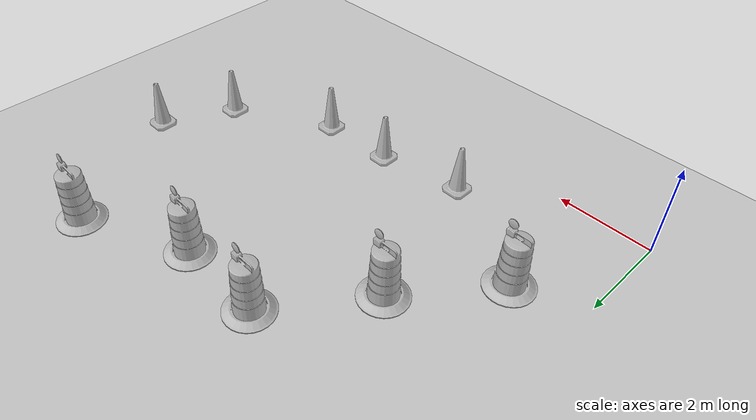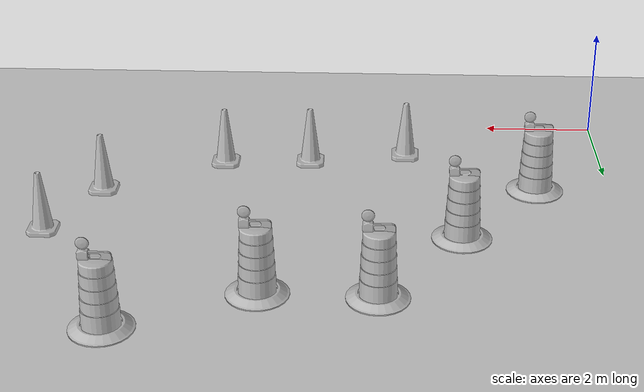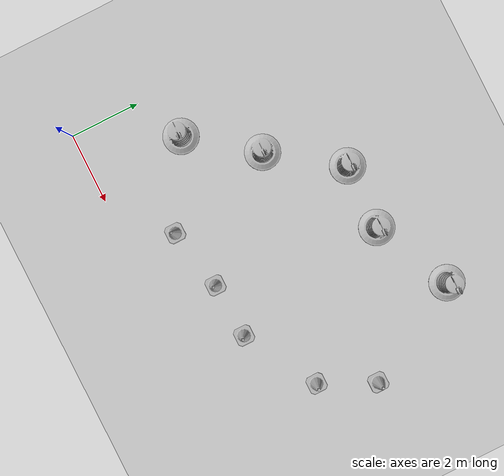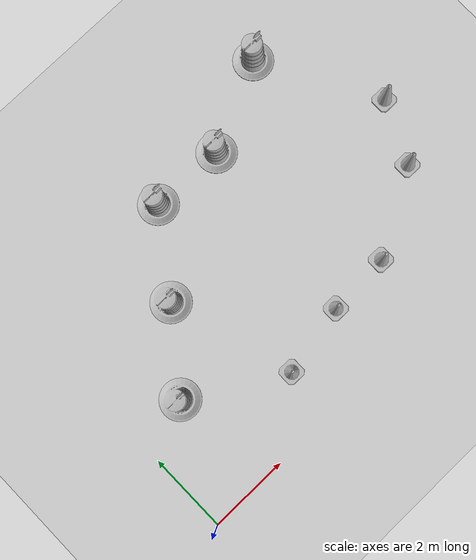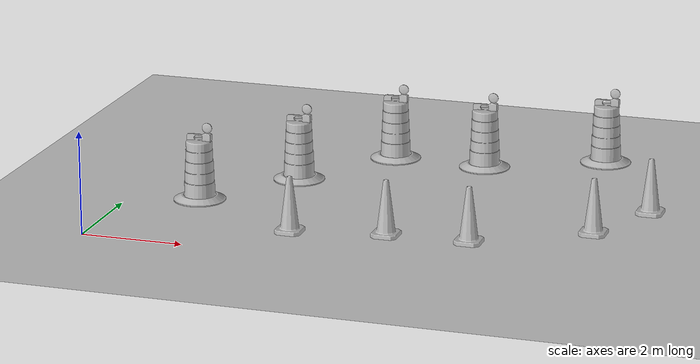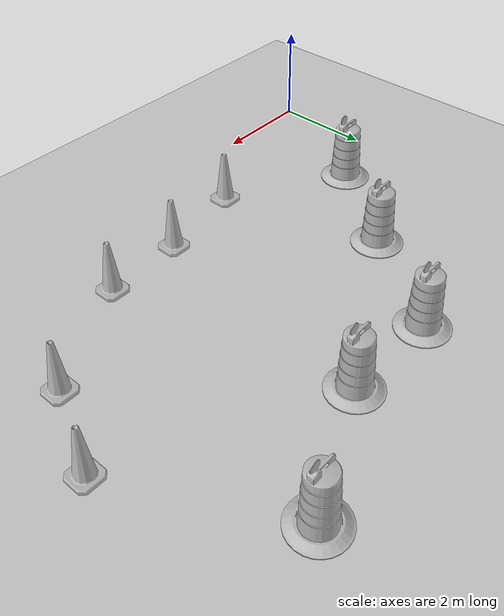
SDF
<sdf version="1.7">
 <world name="default">
  <light name="sun" type="directional">
   <pose>0 0 10 0 -0 0</pose>
   <diffuse>0.8 0.8 0.8 1</diffuse>
   <specular>0.2 0.2 0.2 1</specular>
   <attenuation>
    <range>1000</range>
    <constant>0.9</constant>
    <linear>0.01</linear>
    <quadratic>0.001</quadratic>
   </attenuation>
   <direction>-0.5 0.1 -0.9</direction>
   <spot><inner_angle>0</inner_angle><outer_angle>0</outer_angle><falloff>0</falloff></spot>
  </light>
  <model name="ground_plane">
   <static>1</static>
   <link name="link">
    <collision name="collision">
     <geometry><plane><normal>0 0 1</normal><size>100 100</size></plane></geometry>
     <surface><friction><ode><mu>100</mu><mu2>50</mu2></ode></friction></surface>
    </collision>
    <visual name="visual">
     <cast_shadows>0</cast_shadows>
     <geometry><plane><normal>0 0 1</normal><size>100 100</size></plane></geometry>
     <material>
      <script><uri>file://media/materials/scripts/gazebo.material</uri><name>Gazebo/Grey</name></script>
     </material>
    </visual>
   </link>
  </model>
  <gravity>0 0 -9.8</gravity>
  <magnetic_field>6e-06 2.3e-05 -4.2e-05</magnetic_field>
  <atmosphere type="adiabatic"/>
  <physics type="ode">
   <max_step_size>0.001</max_step_size>
   <real_time_factor>1</real_time_factor>
   <real_time_update_rate>1000</real_time_update_rate>
  </physics>
  <scene><ambient>0.4 0.4 0.4 1</ambient><background>0.7 0.7 0.7 1</background><shadows>1</shadows></scene>
  <audio><device>default</device></audio>
  <spherical_coordinates>
   <surface_model>EARTH_WGS84</surface_model>
   <latitude_deg>0</latitude_deg>
   <longitude_deg>0</longitude_deg>
   <elevation>0</elevation>
   <heading_deg>0</heading_deg>
  </spherical_coordinates>
  <model name="Construction Barrel">
   <link name="link">
    <inertial>
     <pose>0 0 0.4 0 -0 0</pose>
     <mass>500</mass>
     <inertia><ixx>51.2096</ixx><iyy>51.2096</iyy><izz>25</izz><ixy>0</ixy><ixz>0</ixz><iyz>0</iyz></inertia>
    </inertial>
    <collision name="collision">
     <geometry><mesh><uri>model://construction_barrel/meshes/construction_barrel.dae</uri></mesh></geometry>
    </collision>
    <visual name="visual">
     <geometry><mesh><uri>model://construction_barrel/meshes/construction_barrel.dae</uri></mesh></geometry>
    </visual>
   </link>
   <pose>2.74683 4.47609 -0 0 0 -1.9e-05</pose>
  </model>
  <model name="Construction Cone">
   <link name="link">
    <collision name="collision">
     <geometry>
      <mesh><scale>10 10 10</scale><uri>model://construction_cone/meshes/construction_cone.dae</uri></mesh>
     </geometry>
    </collision>
    <visual name="visual">
     <geometry>
      <mesh><scale>10 10 10</scale><uri>model://construction_cone/meshes/construction_cone.dae</uri></mesh>
     </geometry>
    </visual>
    <inertial>
     <inertia><ixx>1</ixx><ixy>0</ixy><ixz>0</ixz><iyy>1</iyy><iyz>0</iyz><izz>1</izz></inertia>
     <mass>1</mass>
    </inertial>
   </link>
   <pose>3.65477 1.32119 -0 0 -1e-06 0</pose>
  </model>
  <model name="Construction Cone_0">
   <link name="link">
    <collision name="collision">
     <geometry>
      <mesh><scale>10 10 10</scale><uri>model://construction_cone/meshes/construction_cone.dae</uri></mesh>
     </geometry>
    </collision>
    <visual name="visual">
     <geometry>
      <mesh><scale>10 10 10</scale><uri>model://construction_cone/meshes/construction_cone.dae</uri></mesh>
     </geometry>
    </visual>
    <inertial>
     <inertia><ixx>1</ixx><ixy>0</ixy><ixz>0</ixz><iyy>1</iyy><iyz>0</iyz><izz>1</izz></inertia>
     <mass>1</mass>
    </inertial>
   </link>
   <pose>5.43862 1.66267 -1e-05 -1e-06 0 0</pose>
  </model>
  <model name="Construction Barrel_0">
   <link name="link">
    <inertial>
     <pose>0 0 0.4 0 -0 0</pose>
     <mass>500</mass>
     <inertia><ixx>51.2096</ixx><iyy>51.2096</iyy><izz>25</izz><ixy>0</ixy><ixz>0</ixz><iyz>0</iyz></inertia>
    </inertial>
    <collision name="collision">
     <geometry><mesh><uri>model://construction_barrel/meshes/construction_barrel.dae</uri></mesh></geometry>
    </collision>
    <visual name="visual">
     <geometry><mesh><uri>model://construction_barrel/meshes/construction_barrel.dae</uri></mesh></geometry>
    </visual>
   </link>
   <pose>1.342 2.66641 1e-06 4e-06 3e-06 -1.6e-05</pose>
  </model>
  <model name="Construction Barrel_1">
   <link name="link">
    <inertial>
     <pose>0 0 0.4 0 -0 0</pose>
     <mass>500</mass>
     <inertia><ixx>51.2096</ixx><iyy>51.2096</iyy><izz>25</izz><ixy>0</ixy><ixz>0</ixz><iyz>0</iyz></inertia>
    </inertial>
    <collision name="collision">
     <geometry><mesh><uri>model://construction_barrel/meshes/construction_barrel.dae</uri></mesh></geometry>
    </collision>
    <visual name="visual">
     <geometry><mesh><uri>model://construction_barrel/meshes/construction_barrel.dae</uri></mesh></geometry>
    </visual>
   </link>
   <pose>4.14093 6.39684 -1e-06 5e-06 -2e-06 -1.3e-05</pose>
  </model>
  <model name="Construction Barrel_2">
   <link name="link">
    <inertial>
     <pose>0 0 0.4 0 -0 0</pose>
     <mass>500</mass>
     <inertia><ixx>51.2096</ixx><iyy>51.2096</iyy><izz>25</izz><ixy>0</ixy><ixz>0</ixz><iyz>0</iyz></inertia>
    </inertial>
    <collision name="collision">
     <geometry><mesh><uri>model://construction_barrel/meshes/construction_barrel.dae</uri></mesh></geometry>
    </collision>
    <visual name="visual">
     <geometry><mesh><uri>model://construction_barrel/meshes/construction_barrel.dae</uri></mesh></geometry>
    </visual>
   </link>
   <pose>6.01851 6.34679 -0 0 0 -1e-05</pose>
  </model>
  <model name="Construction Cone_1">
   <link name="link">
    <collision name="collision">
     <geometry>
      <mesh><scale>10 10 10</scale><uri>model://construction_cone/meshes/construction_cone.dae</uri></mesh>
     </geometry>
    </collision>
    <visual name="visual">
     <geometry>
      <mesh><scale>10 10 10</scale><uri>model://construction_cone/meshes/construction_cone.dae</uri></mesh>
     </geometry>
    </visual>
    <inertial>
     <inertia><ixx>1</ixx><ixy>0</ixy><ixz>0</ixz><iyy>1</iyy><iyz>0</iyz><izz>1</izz></inertia>
     <mass>1</mass>
    </inertial>
   </link>
   <pose>7.02583 1.74132 -0 0 -1e-06 0</pose>
  </model>
  <model name="Construction Barrel_3">
   <link name="link">
    <inertial>
     <pose>0 0 0.4 0 -0 0</pose>
     <mass>500</mass>
     <inertia><ixx>51.2096</ixx><iyy>51.2096</iyy><izz>25</izz><ixy>0</ixy><ixz>0</ixz><iyz>0</iyz></inertia>
    </inertial>
    <collision name="collision">
     <geometry><mesh><uri>model://construction_barrel/meshes/construction_barrel.dae</uri></mesh></geometry>
    </collision>
    <visual name="visual">
     <geometry><mesh><uri>model://construction_barrel/meshes/construction_barrel.dae</uri></mesh></geometry>
    </visual>
   </link>
   <pose>8.24961 7.3881 -2e-06 8e-06 -4e-06 -8e-06</pose>
  </model>
  <model name="Construction Cone_2">
   <link name="link">
    <collision name="collision">
     <geometry>
      <mesh><scale>10 10 10</scale><uri>model://construction_cone/meshes/construction_cone.dae</uri></mesh>
     </geometry>
    </collision>
    <visual name="visual">
     <geometry>
      <mesh><scale>10 10 10</scale><uri>model://construction_cone/meshes/construction_cone.dae</uri></mesh>
     </geometry>
    </visual>
    <inertial>
     <inertia><ixx>1</ixx><ixy>0</ixy><ixz>0</ixz><iyy>1</iyy><iyz>0</iyz><izz>1</izz></inertia>
     <mass>1</mass>
    </inertial>
   </link>
   <pose>9.10557 2.92839 -1e-05 0 -0 0</pose>
  </model>
  <model name="Construction Cone_3">
   <link name="link">
    <collision name="collision">
     <geometry>
      <mesh><scale>10 10 10</scale><uri>model://construction_cone/meshes/construction_cone.dae</uri></mesh>
     </geometry>
    </collision>
    <visual name="visual">
     <geometry>
      <mesh><scale>10 10 10</scale><uri>model://construction_cone/meshes/construction_cone.dae</uri></mesh>
     </geometry>
    </visual>
    <inertial>
     <inertia><ixx>1</ixx><ixy>0</ixy><ixz>0</ixz><iyy>1</iyy><iyz>0</iyz><izz>1</izz></inertia>
     <mass>1</mass>
    </inertial>
   </link>
   <pose>9.8428 4.45917 -0 0 -1e-06 0</pose>
  </model>
 </world>
</sdf>
